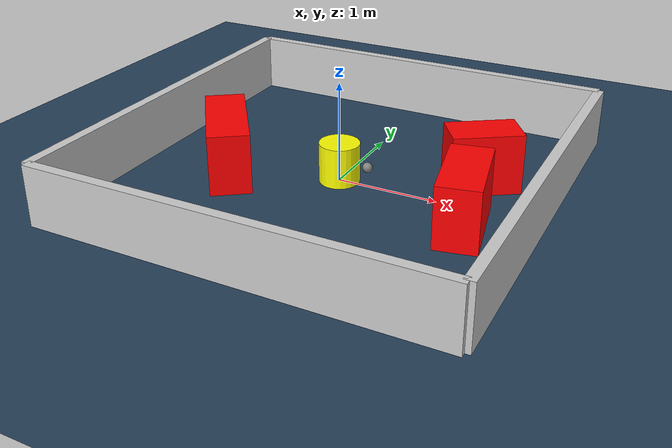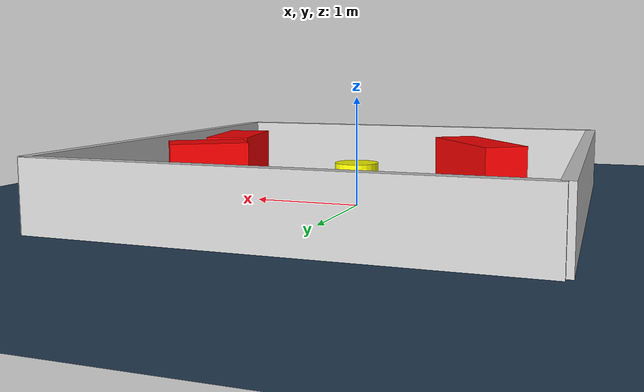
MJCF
<?xml version="1.0" ?>
<mujoco model="generated_environment">
  <option timestep="0.01" integrator="RK4" cone="elliptic"/>
  <default>
    <geom density="1"/>
  </default>
  <asset>
    <texture builtin="gradient" height="3072" rgb1="0.3 0.5 0.7" rgb2="0 0 0" type="skybox" width="512"/>
    <texture builtin="checker" height="300" mark="edge" markrgb="0.8 0.8 0.8" name="groundplane" rgb1="0.2 0.3 0.4" rgb2="0.1 0.2 0.3" type="2d" width="300"/>
    <material name="groundplane" reflectance="0.2" texrepeat="5 5" texture="groundplane" texuniform="true"/>
    <material name="robot" rgba="0.0 1.0 0.0 1"/>
  </asset>
  <worldbody>
    <light dir="0 0 -1" directional="true" pos="0 0 1.5"/>
    <geom condim="4" friction="1.0 0.005 0.001" material="groundplane" name="floor" size="0 0 0.05" type="plane"/>
    <body name="walls">
      <geom name="wall_1" condim="4" pos="-2.0 0.0 0.3" rgba="0.800000011920929 0.800000011920929 0.800000011920929 1.0" size="0.05 2.0 0.3" type="box"/>
      <geom name="wall_2" condim="4" pos="2.0 0.0 0.3" rgba="0.800000011920929 0.800000011920929 0.800000011920929 1.0" size="0.05 2.0 0.3" type="box"/>
      <geom name="wall_3" condim="4" pos="0.0 -2.0 0.3" rgba="0.800000011920929 0.800000011920929 0.800000011920929 1.0" size="2.0 0.05 0.3" type="box"/>
      <geom name="wall_4" condim="4" pos="0.0 2.0 0.3" rgba="0.800000011920929 0.800000011920929 0.800000011920929 1.0" size="2.0 0.05 0.3" type="box"/>
    </body>
    <body name="robot">
      <joint name="joint_x" type="slide" pos="0 0 0" axis="1 0 0"/>
      <joint name="joint_y" type="slide" pos="0 0 0" axis="0 1 0"/>
      <geom name="robot" type="sphere" pos="0.3 0.0 0.2" size="0.05" mass="5." friction="1.0 0.005 0.0001" condim="4" rgba="0.5 0.5 0.5 1.0"/>
      <site name="sensor_ball"/>
    </body>
    <body name="obstacle_movable_1">
      <geom name="obstacle_movable_1" condim="4" pos="0.0 0.0 0.2" euler="0 0 0.0" friction="1.0 0.005 0.001" rgba="1.0 1.0 0.0 1.0" size="0.2 0.2 0.0" type="cylinder" mass="0.1"/>
      <joint type="free"/>
    </body>
    <body name="obstacle_2_static">
      <geom name="obstacle_2_static" condim="4" pos="1.2644246309325742 0.495653597937719 0.3" euler="0 0 213.6022799622497" friction="1.0 0.005 0.001" rgba="1 0 0 1" size="0.343144586460245 0.2 0.3" type="box"/>
    </body>
    <body name="obstacle_3_static">
      <geom name="obstacle_3_static" condim="4" pos="1.3833047523586566 -0.34779327096476487 0.3" euler="0 0 101.63310190569779" friction="1.0 0.005 0.001" rgba="1 0 0 1" size="0.44042584106062677 0.2 0.3" type="box"/>
    </body>
    <body name="obstacle_4_static">
      <geom name="obstacle_4_static" condim="4" pos="-1.075361664252161 -0.3090125389883185 0.3" euler="0 0 125.54956618475491" friction="1.0 0.005 0.001" rgba="1 0 0 1" size="0.5355043792839553 0.2 0.3" type="box"/>
    </body>
  </worldbody>
  <actuator>
    <motor name="actuator_x" joint="joint_x" gear="1" ctrlrange="-1 1"/>
    <motor name="actuator_y" joint="joint_y" gear="1" ctrlrange="-1 1"/>
  </actuator>
</mujoco>
